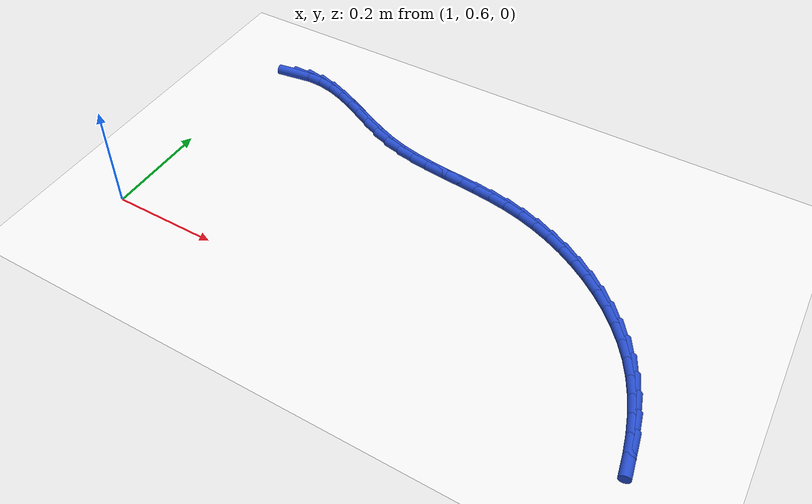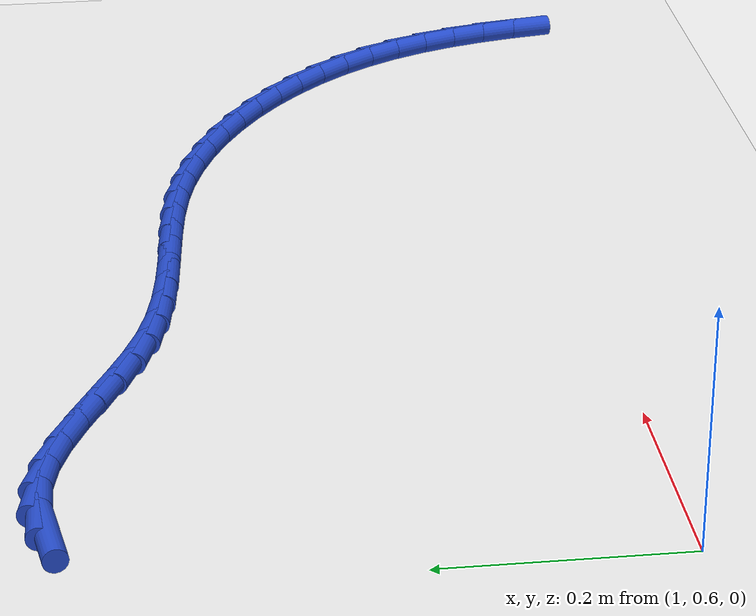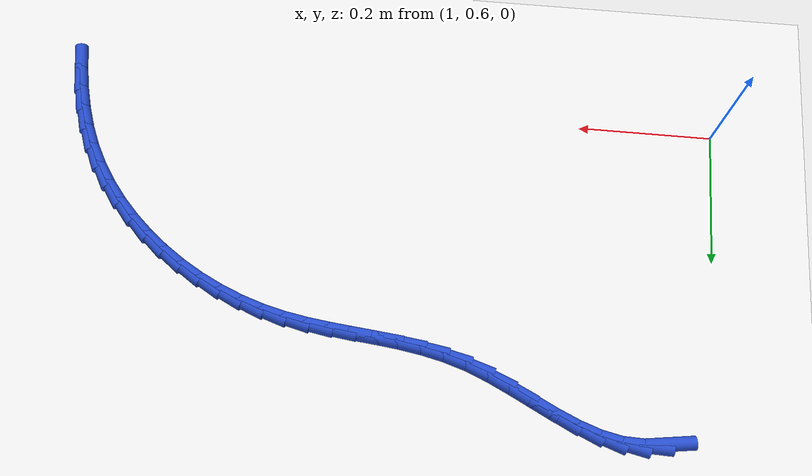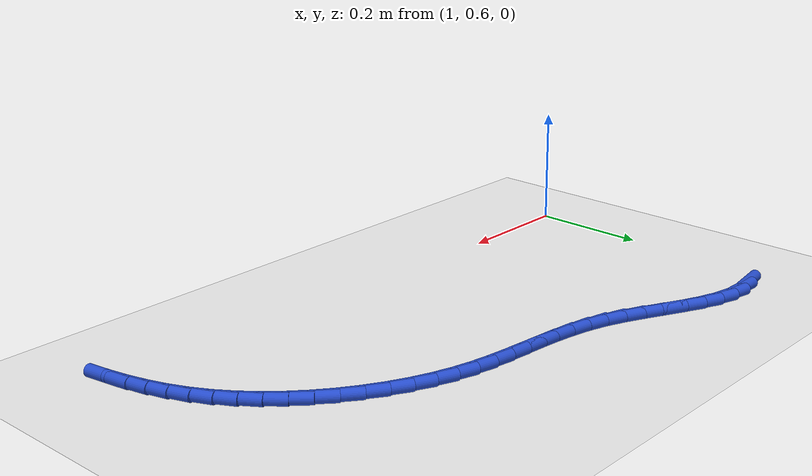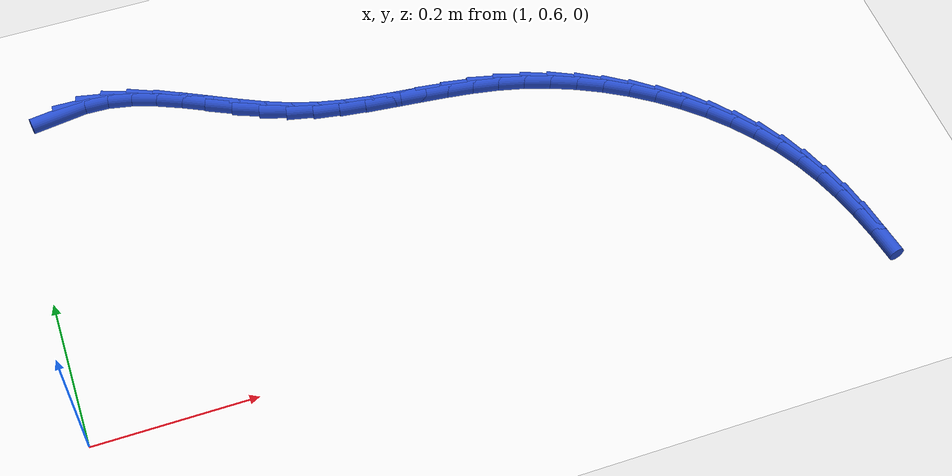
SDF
<sdf version="1.6">
 <world name="default">
  <model name="ground_plane">
   <static>1</static>
   <link name="link">
    <collision name="collision">
     <geometry><plane><normal>0 0 1</normal><size>100 100</size></plane></geometry>
     <surface><friction><ode><mu>100</mu><mu2>50</mu2></ode></friction></surface>
    </collision>
    <visual name="visual">
     <cast_shadows>0</cast_shadows>
     <geometry><plane><normal>0 0 1</normal><size>100 100</size></plane></geometry>
     <material>
      <script><uri>file://media/materials/scripts/gazebo.material</uri><name>Gazebo/WhiteGlow</name></script>
     </material>
    </visual>
   </link>
  </model>
  <model name="line">
   <link name="link_49">
    <pose>1.0678535693084905 1.0706715940314733 0.01 0 1.57 0.14393907729174926</pose>
    <collision name="collision">
     <geometry><cylinder><radius>0.01</radius><length>0.08</length></cylinder></geometry>
    </collision>
    <visual name="visual">
     <material>
      <script><name>Gazebo/Blue</name><uri>file://media/materials/scripts/gazebo.material</uri></script>
     </material>
     <geometry><cylinder><radius>0.01</radius><length>0.08</length></cylinder></geometry>
    </visual>
   </link>
   <link name="link_50">
    <pose>1.0984193208862962 1.0751018383978261 0.01 0 1.57 -0.029986413830368215</pose>
    <collision name="collision">
     <geometry><cylinder><radius>0.01</radius><length>0.08</length></cylinder></geometry>
    </collision>
    <visual name="visual">
     <material>
      <script><name>Gazebo/Blue</name><uri>file://media/materials/scripts/gazebo.material</uri></script>
     </material>
     <geometry><cylinder><radius>0.01</radius><length>0.08</length></cylinder></geometry>
    </visual>
   </link>
   <link name="link_51">
    <pose>1.1289847688106336 1.0741850154131525 0.01 0 1.57 -0.20641243787156788</pose>
    <collision name="collision">
     <geometry><cylinder><radius>0.01</radius><length>0.08</length></cylinder></geometry>
    </collision>
    <visual name="visual">
     <material>
      <script><name>Gazebo/Blue</name><uri>file://media/materials/scripts/gazebo.material</uri></script>
     </material>
     <geometry><cylinder><radius>0.01</radius><length>0.08</length></cylinder></geometry>
    </visual>
   </link>
   <link name="link_52">
    <pose>1.1596124807842272 1.0677717333208352 0.01 0 1.57 -0.3363719242950403</pose>
    <collision name="collision">
     <geometry><cylinder><radius>0.01</radius><length>0.08</length></cylinder></geometry>
    </collision>
    <visual name="visual">
     <material>
      <script><name>Gazebo/Blue</name><uri>file://media/materials/scripts/gazebo.material</uri></script>
     </material>
     <geometry><cylinder><radius>0.01</radius><length>0.08</length></cylinder></geometry>
    </visual>
   </link>
   <link name="link_53">
    <pose>1.190355680847661 1.0570220648709887 0.01 0 1.57 -0.42003805801263283</pose>
    <collision name="collision">
     <geometry><cylinder><radius>0.01</radius><length>0.08</length></cylinder></geometry>
    </collision>
    <visual name="visual">
     <material>
      <script><name>Gazebo/Blue</name><uri>file://media/materials/scripts/gazebo.material</uri></script>
     </material>
     <geometry><cylinder><radius>0.01</radius><length>0.08</length></cylinder></geometry>
    </visual>
   </link>
   <link name="link_54">
    <pose>1.221266732903337 1.0432166266003546 0.01 0 1.57 -0.4640319095619825</pose>
    <collision name="collision">
     <geometry><cylinder><radius>0.01</radius><length>0.08</length></cylinder></geometry>
    </collision>
    <visual name="visual">
     <material>
      <script><name>Gazebo/Blue</name><uri>file://media/materials/scripts/gazebo.material</uri></script>
     </material>
     <geometry><cylinder><radius>0.01</radius><length>0.08</length></cylinder></geometry>
    </visual>
   </link>
   <link name="link_55">
    <pose>1.2523980008536602 1.0276360350456744 0.01 0 1.57 -0.4731095748066718</pose>
    <collision name="collision">
     <geometry><cylinder><radius>0.01</radius><length>0.08</length></cylinder></geometry>
    </collision>
    <visual name="visual">
     <material>
      <script><name>Gazebo/Blue</name><uri>file://media/materials/scripts/gazebo.material</uri></script>
     </material>
     <geometry><cylinder><radius>0.01</radius><length>0.08</length></cylinder></geometry>
    </visual>
   </link>
   <link name="link_56">
    <pose>1.2838018486010327 1.0115609067436897 0.01 0 1.57 -0.449036031214916</pose>
    <collision name="collision">
     <geometry><cylinder><radius>0.01</radius><length>0.08</length></cylinder></geometry>
    </collision>
    <visual name="visual">
     <material>
      <script><name>Gazebo/Blue</name><uri>file://media/materials/scripts/gazebo.material</uri></script>
     </material>
     <geometry><cylinder><radius>0.01</radius><length>0.08</length></cylinder></geometry>
    </visual>
   </link>
   <link name="link_57">
    <pose>1.3155306400478592 0.9962718582311425 0.01 0 1.57 -0.39066546499401184</pose>
    <collision name="collision">
     <geometry><cylinder><radius>0.01</radius><length>0.08</length></cylinder></geometry>
    </collision>
    <visual name="visual">
     <material>
      <script><name>Gazebo/Blue</name><uri>file://media/materials/scripts/gazebo.material</uri></script>
     </material>
     <geometry><cylinder><radius>0.01</radius><length>0.08</length></cylinder></geometry>
    </visual>
   </link>
   <link name="link_58">
    <pose>1.347636739096542 0.9830495060447745 0.01 0 1.57 -0.3024451211469117</pose>
    <collision name="collision">
     <geometry><cylinder><radius>0.01</radius><length>0.08</length></cylinder></geometry>
    </collision>
    <visual name="visual">
     <material>
      <script><name>Gazebo/Blue</name><uri>file://media/materials/scripts/gazebo.material</uri></script>
     </material>
     <geometry><cylinder><radius>0.01</radius><length>0.08</length></cylinder></geometry>
    </visual>
   </link>
   <link name="link_59">
    <pose>1.3801542135722569 0.9729034890172843 0.01 0 1.57 -0.22098126573274096</pose>
    <collision name="collision">
     <geometry><cylinder><radius>0.01</radius><length>0.08</length></cylinder></geometry>
    </collision>
    <visual name="visual">
     <material>
      <script><name>Gazebo/Blue</name><uri>file://media/materials/scripts/gazebo.material</uri></script>
     </material>
     <geometry><cylinder><radius>0.01</radius><length>0.08</length></cylinder></geometry>
    </visual>
   </link>
   <link name="link_60">
    <pose>1.413027670403558 0.9655184675139443 0.01 0 1.57 -0.15983839966538846</pose>
    <collision name="collision">
     <geometry><cylinder><radius>0.01</radius><length>0.08</length></cylinder></geometry>
    </collision>
    <visual name="visual">
     <material>
      <script><name>Gazebo/Blue</name><uri>file://media/materials/scripts/gazebo.material</uri></script>
     </material>
     <geometry><cylinder><radius>0.01</radius><length>0.08</length></cylinder></geometry>
    </visual>
   </link>
   <link name="link_61">
    <pose>1.4461744158232985 0.9601747594966052 0.01 0 1.57 -0.12007043348917931</pose>
    <collision name="collision">
     <geometry><cylinder><radius>0.01</radius><length>0.08</length></cylinder></geometry>
    </collision>
    <visual name="visual">
     <material>
      <script><name>Gazebo/Blue</name><uri>file://media/materials/scripts/gazebo.material</uri></script>
     </material>
     <geometry><cylinder><radius>0.01</radius><length>0.08</length></cylinder></geometry>
    </visual>
   </link>
   <link name="link_62">
    <pose>1.4795117493639343 0.956152583689529 0.01 0 1.57 -0.10191513880578532</pose>
    <collision name="collision">
     <geometry><cylinder><radius>0.01</radius><length>0.08</length></cylinder></geometry>
    </collision>
    <visual name="visual">
     <material>
      <script><name>Gazebo/Blue</name><uri>file://media/materials/scripts/gazebo.material</uri></script>
     </material>
     <geometry><cylinder><radius>0.01</radius><length>0.08</length></cylinder></geometry>
    </visual>
   </link>
   <link name="link_63">
    <pose>1.5129569705579187 0.9527321588169759 0.01 0 1.57 -0.10532767849726478</pose>
    <collision name="collision">
     <geometry><cylinder><radius>0.01</radius><length>0.08</length></cylinder></geometry>
    </collision>
    <visual name="visual">
     <material>
      <script><name>Gazebo/Blue</name><uri>file://media/materials/scripts/gazebo.material</uri></script>
     </material>
     <geometry><cylinder><radius>0.01</radius><length>0.08</length></cylinder></geometry>
    </visual>
   </link>
   <link name="link_64">
    <pose>1.546427378937707 0.9491937036032077 0.01 0 1.57 -0.13023406003100432</pose>
    <collision name="collision">
     <geometry><cylinder><radius>0.01</radius><length>0.08</length></cylinder></geometry>
    </collision>
    <visual name="visual">
     <material>
      <script><name>Gazebo/Blue</name><uri>file://media/materials/scripts/gazebo.material</uri></script>
     </material>
     <geometry><cylinder><radius>0.01</radius><length>0.08</length></cylinder></geometry>
    </visual>
   </link>
   <link name="link_65">
    <pose>1.5798402740357542 0.9448174367724856 0.01 0 1.57 -0.17648485367301484</pose>
    <collision name="collision">
     <geometry><cylinder><radius>0.01</radius><length>0.08</length></cylinder></geometry>
    </collision>
    <visual name="visual">
     <material>
      <script><name>Gazebo/Blue</name><uri>file://media/materials/scripts/gazebo.material</uri></script>
     </material>
     <geometry><cylinder><radius>0.01</radius><length>0.08</length></cylinder></geometry>
    </visual>
   </link>
   <link name="link_66">
    <pose>1.6131129553845145 0.9388835770490706 0.01 0 1.57 -0.24309536410409505</pose>
    <collision name="collision">
     <geometry><cylinder><radius>0.01</radius><length>0.08</length></cylinder></geometry>
    </collision>
    <visual name="visual">
     <material>
      <script><name>Gazebo/Blue</name><uri>file://media/materials/scripts/gazebo.material</uri></script>
     </material>
     <geometry><cylinder><radius>0.01</radius><length>0.08</length></cylinder></geometry>
    </visual>
   </link>
   <link name="link_67">
    <pose>1.64615996847749 0.9306879199796713 0.01 0 1.57 -0.3183501663747156</pose>
    <collision name="collision">
     <geometry><cylinder><radius>0.01</radius><length>0.08</length></cylinder></geometry>
    </collision>
    <visual name="visual">
     <material>
      <script><name>Gazebo/Blue</name><uri>file://media/materials/scripts/gazebo.material</uri></script>
     </material>
     <geometry><cylinder><radius>0.01</radius><length>0.08</length></cylinder></geometry>
    </visual>
   </link>
   <link name="link_68">
    <pose>1.6788257858484694 0.9199225932146647 0.01 0 1.57 -0.39127411628972586</pose>
    <collision name="collision">
     <geometry><cylinder><radius>0.01</radius><length>0.08</length></cylinder></geometry>
    </collision>
    <visual name="visual">
     <material>
      <script><name>Gazebo/Blue</name><uri>file://media/materials/scripts/gazebo.material</uri></script>
     </material>
     <geometry><cylinder><radius>0.01</radius><length>0.08</length></cylinder></geometry>
    </visual>
   </link>
   <link name="link_69">
    <pose>1.7108808507535485 0.9066984334111637 0.01 0 1.57 -0.4622752365895982</pose>
    <collision name="collision">
     <geometry><cylinder><radius>0.01</radius><length>0.08</length></cylinder></geometry>
    </collision>
    <visual name="visual">
     <material>
      <script><name>Gazebo/Blue</name><uri>file://media/materials/scripts/gazebo.material</uri></script>
     </material>
     <geometry><cylinder><radius>0.01</radius><length>0.08</length></cylinder></geometry>
    </visual>
   </link>
   <link name="link_70">
    <pose>1.7420920603979424 0.8911463336619099 0.01 0 1.57 -0.532293784953534</pose>
    <collision name="collision">
     <geometry><cylinder><radius>0.01</radius><length>0.08</length></cylinder></geometry>
    </collision>
    <visual name="visual">
     <material>
      <script><name>Gazebo/Blue</name><uri>file://media/materials/scripts/gazebo.material</uri></script>
     </material>
     <geometry><cylinder><radius>0.01</radius><length>0.08</length></cylinder></geometry>
    </visual>
   </link>
   <link name="link_71">
    <pose>1.7722263119868658 0.8733971870596442 0.01 0 1.57 -0.60225599495063</pose>
    <collision name="collision">
     <geometry><cylinder><radius>0.01</radius><length>0.08</length></cylinder></geometry>
    </collision>
    <visual name="visual">
     <material>
      <script><name>Gazebo/Blue</name><uri>file://media/materials/scripts/gazebo.material</uri></script>
     </material>
     <geometry><cylinder><radius>0.01</radius><length>0.08</length></cylinder></geometry>
    </visual>
   </link>
   <link name="link_72">
    <pose>1.8010505027255335 0.8535818866971076 0.01 0 1.57 -0.6730789430408101</pose>
    <collision name="collision">
     <geometry><cylinder><radius>0.01</radius><length>0.08</length></cylinder></geometry>
    </collision>
    <visual name="visual">
     <material>
      <script><name>Gazebo/Blue</name><uri>file://media/materials/scripts/gazebo.material</uri></script>
     </material>
     <geometry><cylinder><radius>0.01</radius><length>0.08</length></cylinder></geometry>
    </visual>
   </link>
   <link name="link_73">
    <pose>1.8283315298191591 0.8318313256670412 0.01 0 1.57 -0.7456749934348822</pose>
    <collision name="collision">
     <geometry><cylinder><radius>0.01</radius><length>0.08</length></cylinder></geometry>
    </collision>
    <visual name="visual">
     <material>
      <script><name>Gazebo/Blue</name><uri>file://media/materials/scripts/gazebo.material</uri></script>
     </material>
     <geometry><cylinder><radius>0.01</radius><length>0.08</length></cylinder></geometry>
    </visual>
   </link>
   <link name="link_74">
    <pose>1.8538362904729593 0.8082763970621867 0.01 0 1.57 -0.8209512527114518</pose>
    <collision name="collision">
     <geometry><cylinder><radius>0.01</radius><length>0.08</length></cylinder></geometry>
    </collision>
    <visual name="visual">
     <material>
      <script><name>Gazebo/Blue</name><uri>file://media/materials/scripts/gazebo.material</uri></script>
     </material>
     <geometry><cylinder><radius>0.01</radius><length>0.08</length></cylinder></geometry>
    </visual>
   </link>
   <link name="link_75">
    <pose>1.8773316818921466 0.7830479939752845 0.01 0 1.57 -0.899798930314027</pose>
    <collision name="collision">
     <geometry><cylinder><radius>0.01</radius><length>0.08</length></cylinder></geometry>
    </collision>
    <visual name="visual">
     <material>
      <script><name>Gazebo/Blue</name><uri>file://media/materials/scripts/gazebo.material</uri></script>
     </material>
     <geometry><cylinder><radius>0.01</radius><length>0.08</length></cylinder></geometry>
    </visual>
   </link>
   <link name="link_76">
    <pose>1.8985846012819376 0.7562770094990765 0.01 0 1.57 -0.9830665415049503</pose>
    <collision name="collision">
     <geometry><cylinder><radius>0.01</radius><length>0.08</length></cylinder></geometry>
    </collision>
    <visual name="visual">
     <material>
      <script><name>Gazebo/Blue</name><uri>file://media/materials/scripts/gazebo.material</uri></script>
     </material>
     <geometry><cylinder><radius>0.01</radius><length>0.08</length></cylinder></geometry>
    </visual>
   </link>
   <link name="link_77">
    <pose>1.917361945847545 0.7280943367263035 0.01 0 1.57 -1.0709971660193685</pose>
    <collision name="collision">
     <geometry><cylinder><radius>0.01</radius><length>0.08</length></cylinder></geometry>
    </collision>
    <visual name="visual">
     <material>
      <script><name>Gazebo/Blue</name><uri>file://media/materials/scripts/gazebo.material</uri></script>
     </material>
     <geometry><cylinder><radius>0.01</radius><length>0.08</length></cylinder></geometry>
    </visual>
   </link>
   <link name="link_78">
    <pose>1.9334497990003798 0.6986316565140339 0.01 0 1.57 -1.1564975452425064</pose>
    <collision name="collision">
     <geometry><cylinder><radius>0.01</radius><length>0.08</length></cylinder></geometry>
    </collision>
    <visual name="visual">
     <material>
      <script><name>Gazebo/Blue</name><uri>file://media/materials/scripts/gazebo.material</uri></script>
     </material>
     <geometry><cylinder><radius>0.01</radius><length>0.08</length></cylinder></geometry>
    </visual>
   </link>
   <link name="link_79">
    <pose>1.9469061304280308 0.6680318130680081 0.01 0 1.57 -1.233289392907944</pose>
    <collision name="collision">
     <geometry><cylinder><radius>0.01</radius><length>0.08</length></cylinder></geometry>
    </collision>
    <visual name="visual">
     <material>
      <script><name>Gazebo/Blue</name><uri>file://media/materials/scripts/gazebo.material</uri></script>
     </material>
     <geometry><cylinder><radius>0.01</radius><length>0.08</length></cylinder></geometry>
    </visual>
   </link>
   <link name="link_80">
    <pose>1.9579906988065894 0.6364459358258229 0.01 0 1.57 -1.3006623043660834</pose>
    <collision name="collision">
     <geometry><cylinder><radius>0.01</radius><length>0.08</length></cylinder></geometry>
    </collision>
    <visual name="visual">
     <material>
      <script><name>Gazebo/Blue</name><uri>file://media/materials/scripts/gazebo.material</uri></script>
     </material>
     <geometry><cylinder><radius>0.01</radius><length>0.08</length></cylinder></geometry>
    </visual>
   </link>
   <link name="link_81">
    <pose>1.9669680376984513 0.604025350276606 0.01 0 1.57 -1.3585210095250324</pose>
    <collision name="collision">
     <geometry><cylinder><radius>0.01</radius><length>0.08</length></cylinder></geometry>
    </collision>
    <visual name="visual">
     <material>
      <script><name>Gazebo/Blue</name><uri>file://media/materials/scripts/gazebo.material</uri></script>
     </material>
     <geometry><cylinder><radius>0.01</radius><length>0.08</length></cylinder></geometry>
    </visual>
   </link>
   <link name="link_82">
    <pose>1.9741026806660118 0.570921381909485 0.01 0 1.57 -1.4070805378561995</pose>
    <collision name="collision">
     <geometry><cylinder><radius>0.01</radius><length>0.08</length></cylinder></geometry>
    </collision>
    <visual name="visual">
     <material>
      <script><name>Gazebo/Blue</name><uri>file://media/materials/scripts/gazebo.material</uri></script>
     </material>
     <geometry><cylinder><radius>0.01</radius><length>0.08</length></cylinder></geometry>
    </visual>
   </link>
  </model>
 </world>
</sdf>
